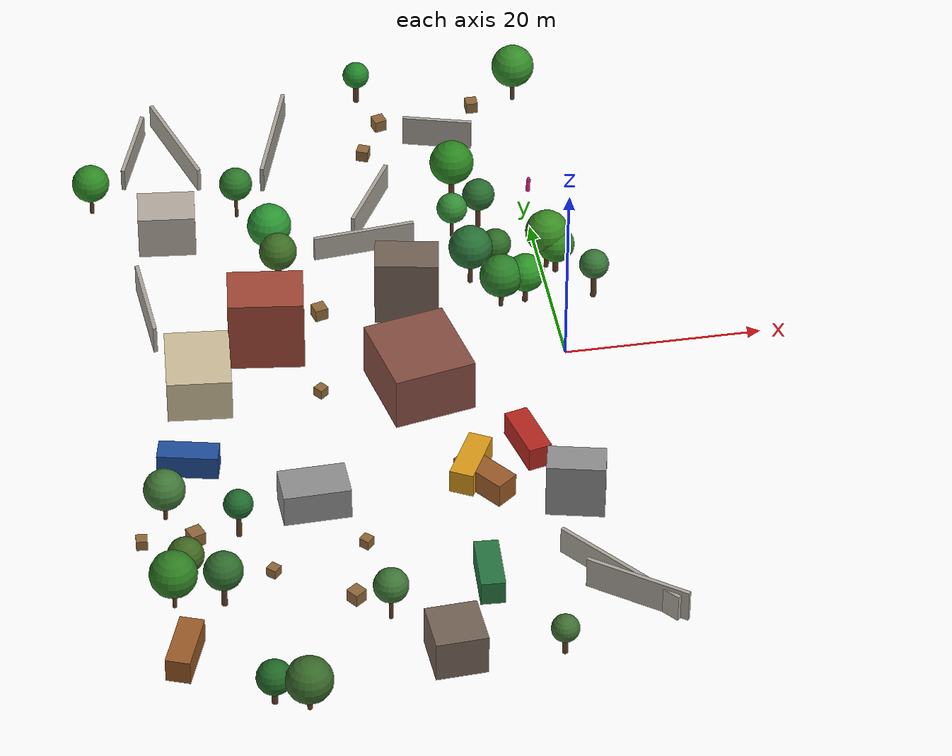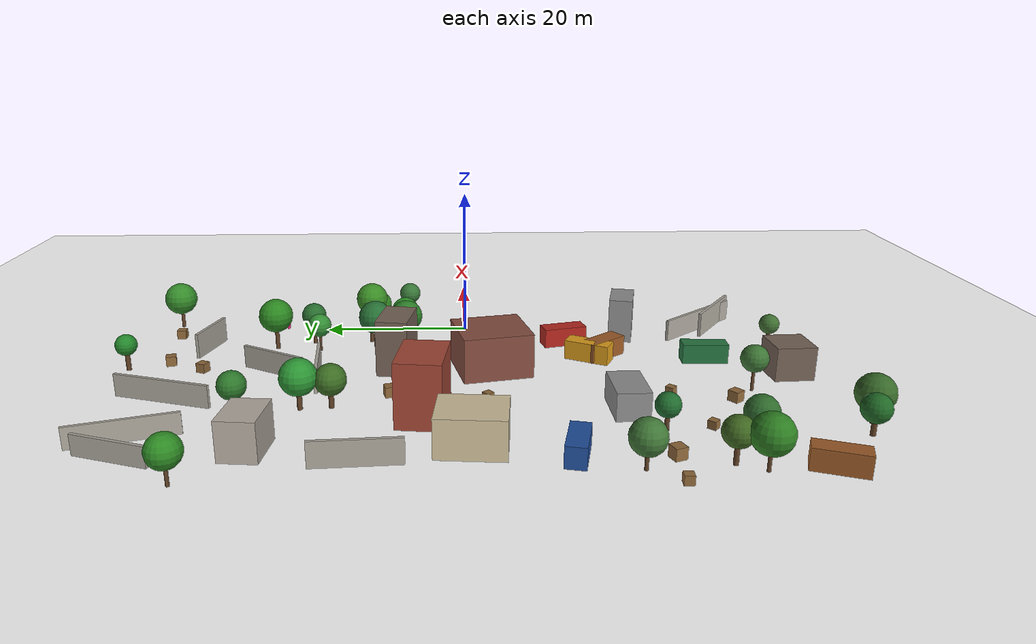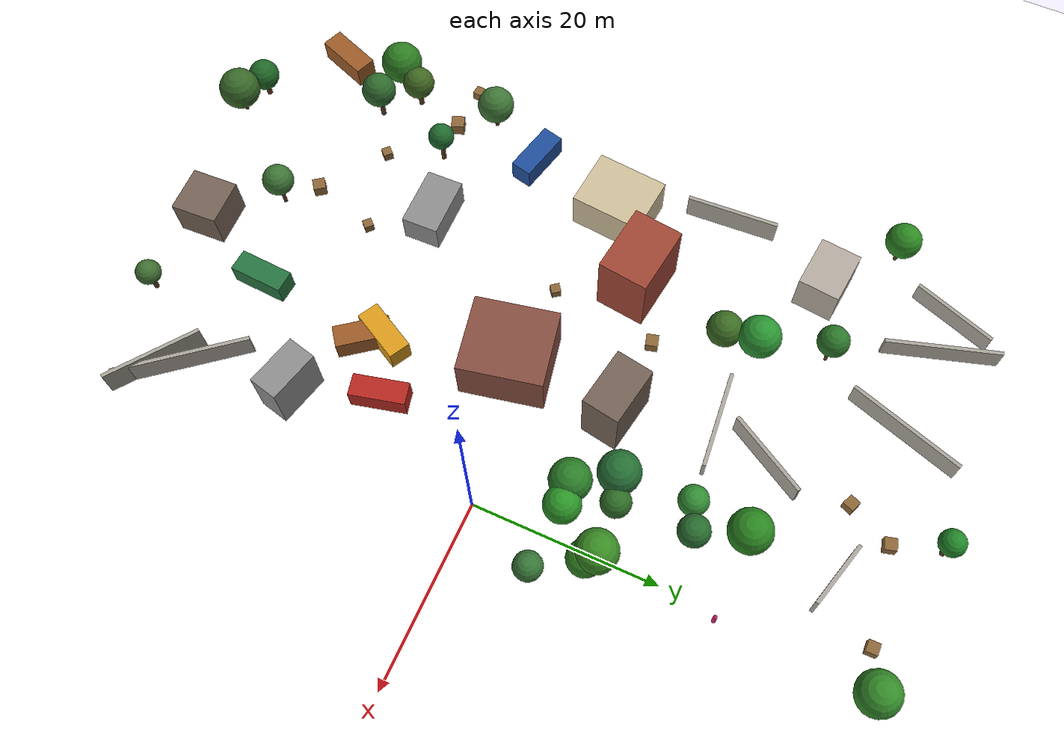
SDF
<sdf version="1.9">
 <world name="map_11">
  <model name="ground_plane">
   <static>true</static>
   <link name="link">
    <collision name="collision">
     <geometry><plane><normal>0 0 1</normal><size>1 1</size></plane></geometry>
    </collision>
   </link>
  </model>
  <include><uri>model://grass_ground</uri></include>
  <model name="building_0">
   <static>true</static>
   <pose>-37.14 -0.07 2.35 0 0 1.478</pose>
   <link name="link">
    <collision name="collision"><geometry><box><size>7.91 6.45 4.70</size></box></geometry></collision>
    <visual name="visual">
     <geometry><box><size>7.91 6.45 4.70</size></box></geometry>
     <material>
      <diffuse>0.800 0.740 0.600 1</diffuse>
      <ambient>0.640 0.592 0.480 1</ambient>
      <specular>0.05 0.05 0.05 1</specular>
     </material>
    </visual>
   </link>
  </model>
  <model name="building_5">
   <static>true</static>
   <pose>-29.55 5.37 4.00 0 0 -0.128</pose>
   <link name="link">
    <collision name="collision"><geometry><box><size>7.60 5.50 7.99</size></box></geometry></collision>
    <visual name="visual">
     <geometry><box><size>7.60 5.50 7.99</size></box></geometry>
     <material>
      <diffuse>0.620 0.270 0.200 1</diffuse>
      <ambient>0.496 0.216 0.160 1</ambient>
      <specular>0.05 0.05 0.05 1</specular>
     </material>
    </visual>
   </link>
  </model>
  <model name="building_6">
   <static>true</static>
   <pose>-14.67 9.16 3.68 0 0 -0.170</pose>
   <link name="link">
    <collision name="collision"><geometry><box><size>6.45 4.11 7.35</size></box></geometry></collision>
    <visual name="visual">
     <geometry><box><size>6.45 4.11 7.35</size></box></geometry>
     <material>
      <diffuse>0.450 0.380 0.330 1</diffuse>
      <ambient>0.360 0.304 0.264 1</ambient>
      <specular>0.05 0.05 0.05 1</specular>
     </material>
    </visual>
   </link>
  </model>
  <model name="building_7">
   <static>true</static>
   <pose>-3.29 -22.29 3.03 0 0 -0.231</pose>
   <link name="link">
    <collision name="collision"><geometry><box><size>5.74 3.22 6.05</size></box></geometry></collision>
    <visual name="visual">
     <geometry><box><size>5.74 3.22 6.05</size></box></geometry>
     <material>
      <diffuse>0.550 0.550 0.550 1</diffuse>
      <ambient>0.440 0.440 0.440 1</ambient>
      <specular>0.05 0.05 0.05 1</specular>
     </material>
    </visual>
   </link>
  </model>
  <model name="building_10">
   <static>true</static>
   <pose>-15.43 -3.11 2.90 0 0 1.774</pose>
   <link name="link">
    <collision name="collision"><geometry><box><size>9.10 8.34 5.81</size></box></geometry></collision>
    <visual name="visual">
     <geometry><box><size>9.10 8.34 5.81</size></box></geometry>
     <material>
      <diffuse>0.520 0.300 0.250 1</diffuse>
      <ambient>0.416 0.240 0.200 1</ambient>
      <specular>0.05 0.05 0.05 1</specular>
     </material>
    </visual>
   </link>
  </model>
  <model name="building_14">
   <static>true</static>
   <pose>-18.26 -41.08 2.21 0 0 1.622</pose>
   <link name="link">
    <collision name="collision"><geometry><box><size>5.15 5.05 4.43</size></box></geometry></collision>
    <visual name="visual">
     <geometry><box><size>5.15 5.05 4.43</size></box></geometry>
     <material>
      <diffuse>0.450 0.380 0.330 1</diffuse>
      <ambient>0.360 0.304 0.264 1</ambient>
      <specular>0.05 0.05 0.05 1</specular>
     </material>
    </visual>
   </link>
  </model>
  <model name="building_15">
   <static>true</static>
   <pose>-37.28 23.92 2.39 0 0 1.466</pose>
   <link name="link">
    <collision name="collision"><geometry><box><size>4.48 5.85 4.79</size></box></geometry></collision>
    <visual name="visual">
     <geometry><box><size>4.48 5.85 4.79</size></box></geometry>
     <material>
      <diffuse>0.700 0.660 0.620 1</diffuse>
      <ambient>0.560 0.528 0.496 1</ambient>
      <specular>0.05 0.05 0.05 1</specular>
     </material>
    </visual>
   </link>
  </model>
  <model name="building_17">
   <static>true</static>
   <pose>-28.28 -18.48 1.74 0 0 1.595</pose>
   <link name="link">
    <collision name="collision"><geometry><box><size>4.08 6.65 3.48</size></box></geometry></collision>
    <visual name="visual">
     <geometry><box><size>4.08 6.65 3.48</size></box></geometry>
     <material>
      <diffuse>0.550 0.550 0.550 1</diffuse>
      <ambient>0.440 0.440 0.440 1</ambient>
      <specular>0.05 0.05 0.05 1</specular>
     </material>
    </visual>
   </link>
  </model>
  <model name="wall_0">
   <static>true</static>
   <pose>-15.99 24.98 1.49 0 0 1.043</pose>
   <link name="link">
    <collision name="collision"><geometry><box><size>9.46 0.40 2.99</size></box></geometry></collision>
    <visual name="visual">
     <geometry><box><size>9.46 0.40 2.99</size></box></geometry>
     <material>
      <diffuse>0.660 0.640 0.600 1</diffuse>
      <ambient>0.528 0.512 0.480 1</ambient>
      <specular>0.05 0.05 0.05 1</specular>
     </material>
    </visual>
   </link>
  </model>
  <model name="wall_1">
   <static>true</static>
   <pose>-34.68 37.65 1.33 0 0 1.866</pose>
   <link name="link">
    <collision name="collision"><geometry><box><size>12.21 0.40 2.67</size></box></geometry></collision>
    <visual name="visual">
     <geometry><box><size>12.21 0.40 2.67</size></box></geometry>
     <material>
      <diffuse>0.660 0.640 0.600 1</diffuse>
      <ambient>0.528 0.512 0.480 1</ambient>
      <specular>0.05 0.05 0.05 1</specular>
     </material>
    </visual>
   </link>
  </model>
  <model name="wall_3">
   <static>true</static>
   <pose>-39.17 37.57 1.27 0 0 1.229</pose>
   <link name="link">
    <collision name="collision"><geometry><box><size>9.34 0.40 2.53</size></box></geometry></collision>
    <visual name="visual">
     <geometry><box><size>9.34 0.40 2.53</size></box></geometry>
     <material>
      <diffuse>0.660 0.640 0.600 1</diffuse>
      <ambient>0.528 0.512 0.480 1</ambient>
      <specular>0.05 0.05 0.05 1</specular>
     </material>
    </visual>
   </link>
  </model>
  <model name="wall_4">
   <static>true</static>
   <pose>-40.90 11.93 1.54 0 0 1.630</pose>
   <link name="link">
    <collision name="collision"><geometry><box><size>10.09 0.40 3.08</size></box></geometry></collision>
    <visual name="visual">
     <geometry><box><size>10.09 0.40 3.08</size></box></geometry>
     <material>
      <diffuse>0.660 0.640 0.600 1</diffuse>
      <ambient>0.528 0.512 0.480 1</ambient>
      <specular>0.05 0.05 0.05 1</specular>
     </material>
    </visual>
   </link>
  </model>
  <model name="wall_5">
   <static>true</static>
   <pose>-7.16 35.20 1.70 0 0 2.864</pose>
   <link name="link">
    <collision name="collision"><geometry><box><size>7.24 0.40 3.40</size></box></geometry></collision>
    <visual name="visual">
     <geometry><box><size>7.24 0.40 3.40</size></box></geometry>
     <material>
      <diffuse>0.660 0.640 0.600 1</diffuse>
      <ambient>0.528 0.512 0.480 1</ambient>
      <specular>0.05 0.05 0.05 1</specular>
     </material>
    </visual>
   </link>
  </model>
  <model name="wall_6">
   <static>true</static>
   <pose>-0.06 -36.59 1.72 0 0 2.512</pose>
   <link name="link">
    <collision name="collision"><geometry><box><size>10.61 0.40 3.44</size></box></geometry></collision>
    <visual name="visual">
     <geometry><box><size>10.61 0.40 3.44</size></box></geometry>
     <material>
      <diffuse>0.660 0.640 0.600 1</diffuse>
      <ambient>0.528 0.512 0.480 1</ambient>
      <specular>0.05 0.05 0.05 1</specular>
     </material>
    </visual>
   </link>
  </model>
  <model name="wall_8">
   <static>true</static>
   <pose>-24.46 36.70 1.45 0 0 1.255</pose>
   <link name="link">
    <collision name="collision"><geometry><box><size>12.90 0.40 2.90</size></box></geometry></collision>
    <visual name="visual">
     <geometry><box><size>12.90 0.40 2.90</size></box></geometry>
     <material>
      <diffuse>0.660 0.640 0.600 1</diffuse>
      <ambient>0.528 0.512 0.480 1</ambient>
      <specular>0.05 0.05 0.05 1</specular>
     </material>
    </visual>
   </link>
  </model>
  <model name="wall_10">
   <static>true</static>
   <pose>-17.50 19.16 1.37 0 0 0.092</pose>
   <link name="link">
    <collision name="collision"><geometry><box><size>10.52 0.40 2.75</size></box></geometry></collision>
    <visual name="visual">
     <geometry><box><size>10.52 0.40 2.75</size></box></geometry>
     <material>
      <diffuse>0.660 0.640 0.600 1</diffuse>
      <ambient>0.528 0.512 0.480 1</ambient>
      <specular>0.05 0.05 0.05 1</specular>
     </material>
    </visual>
   </link>
  </model>
  <model name="wall_11">
   <static>true</static>
   <pose>-1.28 -34.03 1.48 0 0 2.255</pose>
   <link name="link">
    <collision name="collision"><geometry><box><size>14.44 0.40 2.97</size></box></geometry></collision>
    <visual name="visual">
     <geometry><box><size>14.44 0.40 2.97</size></box></geometry>
     <material>
      <diffuse>0.660 0.640 0.600 1</diffuse>
      <ambient>0.528 0.512 0.480 1</ambient>
      <specular>0.05 0.05 0.05 1</specular>
     </material>
    </visual>
   </link>
  </model>
  <model name="container_0">
   <static>true</static>
   <pose>-6.40 -13.59 1.30 0 0 1.811</pose>
   <link name="link">
    <collision name="collision"><geometry><box><size>6.00 2.40 2.60</size></box></geometry></collision>
    <visual name="visual">
     <geometry><box><size>6.00 2.40 2.60</size></box></geometry>
     <material>
      <diffuse>0.700 0.150 0.120 1</diffuse>
      <ambient>0.560 0.120 0.096 1</ambient>
      <specular>0.05 0.05 0.05 1</specular>
     </material>
    </visual>
   </link>
  </model>
  <model name="container_1">
   <static>true</static>
   <pose>-43.27 -37.23 1.30 0 0 1.210</pose>
   <link name="link">
    <collision name="collision"><geometry><box><size>6.00 2.40 2.60</size></box></geometry></collision>
    <visual name="visual">
     <geometry><box><size>6.00 2.40 2.60</size></box></geometry>
     <material>
      <diffuse>0.600 0.350 0.150 1</diffuse>
      <ambient>0.480 0.280 0.120 1</ambient>
      <specular>0.05 0.05 0.05 1</specular>
     </material>
    </visual>
   </link>
  </model>
  <model name="container_2">
   <static>true</static>
   <pose>-12.53 -16.29 1.30 0 0 1.078</pose>
   <link name="link">
    <collision name="collision"><geometry><box><size>6.00 2.40 2.60</size></box></geometry></collision>
    <visual name="visual">
     <geometry><box><size>6.00 2.40 2.60</size></box></geometry>
     <material>
      <diffuse>0.850 0.600 0.100 1</diffuse>
      <ambient>0.680 0.480 0.080 1</ambient>
      <specular>0.05 0.05 0.05 1</specular>
     </material>
    </visual>
   </link>
  </model>
  <model name="container_3">
   <static>true</static>
   <pose>-13.43 -31.58 1.30 0 0 1.517</pose>
   <link name="link">
    <collision name="collision"><geometry><box><size>6.00 2.40 2.60</size></box></geometry></collision>
    <visual name="visual">
     <geometry><box><size>6.00 2.40 2.60</size></box></geometry>
     <material>
      <diffuse>0.150 0.450 0.250 1</diffuse>
      <ambient>0.120 0.360 0.200 1</ambient>
      <specular>0.05 0.05 0.05 1</specular>
     </material>
    </visual>
   </link>
  </model>
  <model name="container_4">
   <static>true</static>
   <pose>-11.52 -18.28 1.30 0 0 2.227</pose>
   <link name="link">
    <collision name="collision"><geometry><box><size>6.00 2.40 2.60</size></box></geometry></collision>
    <visual name="visual">
     <geometry><box><size>6.00 2.40 2.60</size></box></geometry>
     <material>
      <diffuse>0.600 0.350 0.150 1</diffuse>
      <ambient>0.480 0.280 0.120 1</ambient>
      <specular>0.05 0.05 0.05 1</specular>
     </material>
    </visual>
   </link>
  </model>
  <model name="container_7">
   <static>true</static>
   <pose>-39.58 -11.09 1.30 0 0 2.912</pose>
   <link name="link">
    <collision name="collision"><geometry><box><size>6.00 2.40 2.60</size></box></geometry></collision>
    <visual name="visual">
     <geometry><box><size>6.00 2.40 2.60</size></box></geometry>
     <material>
      <diffuse>0.120 0.300 0.600 1</diffuse>
      <ambient>0.096 0.240 0.480 1</ambient>
      <specular>0.05 0.05 0.05 1</specular>
     </material>
    </visual>
   </link>
  </model>
  <model name="crate_2">
   <static>true</static>
   <pose>-12.77 39.08 0.65 0 0 0.256</pose>
   <link name="link">
    <collision name="collision"><geometry><box><size>1.29 1.29 1.29</size></box></geometry></collision>
    <visual name="visual">
     <geometry><box><size>1.29 1.29 1.29</size></box></geometry>
     <material>
      <diffuse>0.550 0.400 0.220 1</diffuse>
      <ambient>0.440 0.320 0.176 1</ambient>
      <specular>0.05 0.05 0.05 1</specular>
     </material>
    </visual>
   </link>
  </model>
  <model name="crate_3">
   <static>true</static>
   <pose>-24.14 -24.62 0.52 0 0 2.388</pose>
   <link name="link">
    <collision name="collision"><geometry><box><size>1.03 1.03 1.03</size></box></geometry></collision>
    <visual name="visual">
     <geometry><box><size>1.03 1.03 1.03</size></box></geometry>
     <material>
      <diffuse>0.550 0.400 0.220 1</diffuse>
      <ambient>0.440 0.320 0.176 1</ambient>
      <specular>0.05 0.05 0.05 1</specular>
     </material>
    </visual>
   </link>
  </model>
  <model name="crate_5">
   <static>true</static>
   <pose>-2.55 40.56 0.62 0 0 0.022</pose>
   <link name="link">
    <collision name="collision"><geometry><box><size>1.23 1.23 1.23</size></box></geometry></collision>
    <visual name="visual">
     <geometry><box><size>1.23 1.23 1.23</size></box></geometry>
     <material>
      <diffuse>0.550 0.400 0.220 1</diffuse>
      <ambient>0.440 0.320 0.176 1</ambient>
      <specular>0.05 0.05 0.05 1</specular>
     </material>
    </visual>
   </link>
  </model>
  <model name="crate_7">
   <static>true</static>
   <pose>-33.49 -27.17 0.52 0 0 0.820</pose>
   <link name="link">
    <collision name="collision"><geometry><box><size>1.04 1.04 1.04</size></box></geometry></collision>
    <visual name="visual">
     <geometry><box><size>1.04 1.04 1.04</size></box></geometry>
     <material>
      <diffuse>0.550 0.400 0.220 1</diffuse>
      <ambient>0.440 0.320 0.176 1</ambient>
      <specular>0.05 0.05 0.05 1</specular>
     </material>
    </visual>
   </link>
  </model>
  <model name="crate_11">
   <static>true</static>
   <pose>-40.25 -21.45 0.74 0 0 0.361</pose>
   <link name="link">
    <collision name="collision"><geometry><box><size>1.47 1.47 1.47</size></box></geometry></collision>
    <visual name="visual">
     <geometry><box><size>1.47 1.47 1.47</size></box></geometry>
     <material>
      <diffuse>0.550 0.400 0.220 1</diffuse>
      <ambient>0.440 0.320 0.176 1</ambient>
      <specular>0.05 0.05 0.05 1</specular>
     </material>
    </visual>
   </link>
  </model>
  <model name="crate_14">
   <static>true</static>
   <pose>-25.19 -2.30 0.52 0 0 0.658</pose>
   <link name="link">
    <collision name="collision"><geometry><box><size>1.04 1.04 1.04</size></box></geometry></collision>
    <visual name="visual">
     <geometry><box><size>1.04 1.04 1.04</size></box></geometry>
     <material>
      <diffuse>0.550 0.400 0.220 1</diffuse>
      <ambient>0.440 0.320 0.176 1</ambient>
      <specular>0.05 0.05 0.05 1</specular>
     </material>
    </visual>
   </link>
  </model>
  <model name="crate_15">
   <static>true</static>
   <pose>-45.44 -21.21 0.56 0 0 1.507</pose>
   <link name="link">
    <collision name="collision"><geometry><box><size>1.11 1.11 1.11</size></box></geometry></collision>
    <visual name="visual">
     <geometry><box><size>1.11 1.11 1.11</size></box></geometry>
     <material>
      <diffuse>0.550 0.400 0.220 1</diffuse>
      <ambient>0.440 0.320 0.176 1</ambient>
      <specular>0.05 0.05 0.05 1</specular>
     </material>
    </visual>
   </link>
  </model>
  <model name="crate_19">
   <static>true</static>
   <pose>-15.19 34.31 0.62 0 0 2.737</pose>
   <link name="link">
    <collision name="collision"><geometry><box><size>1.24 1.24 1.24</size></box></geometry></collision>
    <visual name="visual">
     <geometry><box><size>1.24 1.24 1.24</size></box></geometry>
     <material>
      <diffuse>0.550 0.400 0.220 1</diffuse>
      <ambient>0.440 0.320 0.176 1</ambient>
      <specular>0.05 0.05 0.05 1</specular>
     </material>
    </visual>
   </link>
  </model>
  <model name="crate_20">
   <static>true</static>
   <pose>-26.27 -31.94 0.68 0 0 0.638</pose>
   <link name="link">
    <collision name="collision"><geometry><box><size>1.36 1.36 1.36</size></box></geometry></collision>
    <visual name="visual">
     <geometry><box><size>1.36 1.36 1.36</size></box></geometry>
     <material>
      <diffuse>0.550 0.400 0.220 1</diffuse>
      <ambient>0.440 0.320 0.176 1</ambient>
      <specular>0.05 0.05 0.05 1</specular>
     </material>
    </visual>
   </link>
  </model>
  <model name="crate_23">
   <static>true</static>
   <pose>-23.57 9.59 0.67 0 0 0.264</pose>
   <link name="link">
    <collision name="collision"><geometry><box><size>1.34 1.34 1.34</size></box></geometry></collision>
    <visual name="visual">
     <geometry><box><size>1.34 1.34 1.34</size></box></geometry>
     <material>
      <diffuse>0.550 0.400 0.220 1</diffuse>
      <ambient>0.440 0.320 0.176 1</ambient>
      <specular>0.05 0.05 0.05 1</specular>
     </material>
    </visual>
   </link>
  </model>
  <model name="tree_0">
   <static>true</static>
   <pose>-38.67 -30.45 0 0 0 0</pose>
   <link name="link">
    <collision name="trunk">
     <pose>0 0 1.52 0 0 0</pose>
     <geometry><cylinder><radius>0.28</radius><length>3.04</length></cylinder></geometry>
    </collision>
    <visual name="trunk">
     <pose>0 0 1.52 0 0 0</pose>
     <geometry><cylinder><radius>0.28</radius><length>3.04</length></cylinder></geometry>
     <material>
      <diffuse>0.360 0.240 0.140 1</diffuse>
      <ambient>0.288 0.192 0.112 1</ambient>
      <specular>0.05 0.05 0.05 1</specular>
     </material>
    </visual>
    <collision name="canopy">
     <pose>0 0 4.39 0 0 0</pose>
     <geometry><sphere><radius>1.92</radius></sphere></geometry>
    </collision>
    <visual name="canopy">
     <pose>0 0 4.39 0 0 0</pose>
     <geometry><sphere><radius>1.92</radius></sphere></geometry>
     <material>
      <diffuse>0.182 0.416 0.174 1</diffuse>
      <ambient>0.146 0.333 0.139 1</ambient>
      <specular>0.05 0.05 0.05 1</specular>
     </material>
    </visual>
   </link>
  </model>
  <model name="tree_2">
   <static>true</static>
   <pose>-4.82 13.30 0 0 0 0</pose>
   <link name="link">
    <collision name="trunk">
     <pose>0 0 1.40 0 0 0</pose>
     <geometry><cylinder><radius>0.28</radius><length>2.81</length></cylinder></geometry>
    </collision>
    <visual name="trunk">
     <pose>0 0 1.40 0 0 0</pose>
     <geometry><cylinder><radius>0.28</radius><length>2.81</length></cylinder></geometry>
     <material>
      <diffuse>0.360 0.240 0.140 1</diffuse>
      <ambient>0.288 0.192 0.112 1</ambient>
      <specular>0.05 0.05 0.05 1</specular>
     </material>
    </visual>
    <collision name="canopy">
     <pose>0 0 3.92 0 0 0</pose>
     <geometry><sphere><radius>1.60</radius></sphere></geometry>
    </collision>
    <visual name="canopy">
     <pose>0 0 3.92 0 0 0</pose>
     <geometry><sphere><radius>1.60</radius></sphere></geometry>
     <material>
      <diffuse>0.180 0.424 0.149 1</diffuse>
      <ambient>0.144 0.339 0.119 1</ambient>
      <specular>0.05 0.05 0.05 1</specular>
     </material>
    </visual>
   </link>
  </model>
  <model name="tree_6">
   <static>true</static>
   <pose>-8.12 -42.12 0 0 0 0</pose>
   <link name="link">
    <collision name="trunk">
     <pose>0 0 1.09 0 0 0</pose>
     <geometry><cylinder><radius>0.26</radius><length>2.18</length></cylinder></geometry>
    </collision>
    <visual name="trunk">
     <pose>0 0 1.09 0 0 0</pose>
     <geometry><cylinder><radius>0.26</radius><length>2.18</length></cylinder></geometry>
     <material>
      <diffuse>0.360 0.240 0.140 1</diffuse>
      <ambient>0.288 0.192 0.112 1</ambient>
      <specular>0.05 0.05 0.05 1</specular>
     </material>
    </visual>
    <collision name="canopy">
     <pose>0 0 3.14 0 0 0</pose>
     <geometry><sphere><radius>1.37</radius></sphere></geometry>
    </collision>
    <visual name="canopy">
     <pose>0 0 3.14 0 0 0</pose>
     <geometry><sphere><radius>1.37</radius></sphere></geometry>
     <material>
      <diffuse>0.248 0.434 0.193 1</diffuse>
      <ambient>0.198 0.347 0.154 1</ambient>
      <specular>0.05 0.05 0.05 1</specular>
     </material>
    </visual>
   </link>
  </model>
  <model name="tree_7">
   <static>true</static>
   <pose>-5.11 8.36 0 0 0 0</pose>
   <link name="link">
    <collision name="trunk">
     <pose>0 0 1.15 0 0 0</pose>
     <geometry><cylinder><radius>0.25</radius><length>2.31</length></cylinder></geometry>
    </collision>
    <visual name="trunk">
     <pose>0 0 1.15 0 0 0</pose>
     <geometry><cylinder><radius>0.25</radius><length>2.31</length></cylinder></geometry>
     <material>
      <diffuse>0.360 0.240 0.140 1</diffuse>
      <ambient>0.288 0.192 0.112 1</ambient>
      <specular>0.05 0.05 0.05 1</specular>
     </material>
    </visual>
    <collision name="canopy">
     <pose>0 0 3.85 0 0 0</pose>
     <geometry><sphere><radius>2.21</radius></sphere></geometry>
    </collision>
    <visual name="canopy">
     <pose>0 0 3.85 0 0 0</pose>
     <geometry><sphere><radius>2.21</radius></sphere></geometry>
     <material>
      <diffuse>0.169 0.496 0.157 1</diffuse>
      <ambient>0.135 0.397 0.126 1</ambient>
      <specular>0.05 0.05 0.05 1</specular>
     </material>
    </visual>
   </link>
  </model>
  <model name="tree_8">
   <static>true</static>
   <pose>-44.38 29.99 0 0 0 0</pose>
   <link name="link">
    <collision name="trunk">
     <pose>0 0 1.25 0 0 0</pose>
     <geometry><cylinder><radius>0.21</radius><length>2.50</length></cylinder></geometry>
    </collision>
    <visual name="trunk">
     <pose>0 0 1.25 0 0 0</pose>
     <geometry><cylinder><radius>0.21</radius><length>2.50</length></cylinder></geometry>
     <material>
      <diffuse>0.360 0.240 0.140 1</diffuse>
      <ambient>0.288 0.192 0.112 1</ambient>
      <specular>0.05 0.05 0.05 1</specular>
     </material>
    </visual>
    <collision name="canopy">
     <pose>0 0 3.85 0 0 0</pose>
     <geometry><sphere><radius>1.93</radius></sphere></geometry>
    </collision>
    <visual name="canopy">
     <pose>0 0 3.85 0 0 0</pose>
     <geometry><sphere><radius>1.93</radius></sphere></geometry>
     <material>
      <diffuse>0.177 0.538 0.140 1</diffuse>
      <ambient>0.141 0.430 0.112 1</ambient>
      <specular>0.05 0.05 0.05 1</specular>
     </material>
    </visual>
   </link>
  </model>
  <model name="tree_10">
   <static>true</static>
   <pose>-26.79 16.22 0 0 0 0</pose>
   <link name="link">
    <collision name="trunk">
     <pose>0 0 1.11 0 0 0</pose>
     <geometry><cylinder><radius>0.32</radius><length>2.23</length></cylinder></geometry>
    </collision>
    <visual name="trunk">
     <pose>0 0 1.11 0 0 0</pose>
     <geometry><cylinder><radius>0.32</radius><length>2.23</length></cylinder></geometry>
     <material>
      <diffuse>0.360 0.240 0.140 1</diffuse>
      <ambient>0.288 0.192 0.112 1</ambient>
      <specular>0.05 0.05 0.05 1</specular>
     </material>
    </visual>
    <collision name="canopy">
     <pose>0 0 3.58 0 0 0</pose>
     <geometry><sphere><radius>1.93</radius></sphere></geometry>
    </collision>
    <visual name="canopy">
     <pose>0 0 3.58 0 0 0</pose>
     <geometry><sphere><radius>1.93</radius></sphere></geometry>
     <material>
      <diffuse>0.235 0.426 0.137 1</diffuse>
      <ambient>0.188 0.341 0.110 1</ambient>
      <specular>0.05 0.05 0.05 1</specular>
     </material>
    </visual>
   </link>
  </model>
  <model name="tree_11">
   <static>true</static>
   <pose>1.35 12.76 0 0 0 0</pose>
   <link name="link">
    <collision name="trunk">
     <pose>0 0 1.10 0 0 0</pose>
     <geometry><cylinder><radius>0.27</radius><length>2.20</length></cylinder></geometry>
    </collision>
    <visual name="trunk">
     <pose>0 0 1.10 0 0 0</pose>
     <geometry><cylinder><radius>0.27</radius><length>2.20</length></cylinder></geometry>
     <material>
      <diffuse>0.360 0.240 0.140 1</diffuse>
      <ambient>0.288 0.192 0.112 1</ambient>
      <specular>0.05 0.05 0.05 1</specular>
     </material>
    </visual>
    <collision name="canopy">
     <pose>0 0 3.53 0 0 0</pose>
     <geometry><sphere><radius>1.91</radius></sphere></geometry>
    </collision>
    <visual name="canopy">
     <pose>0 0 3.53 0 0 0</pose>
     <geometry><sphere><radius>1.91</radius></sphere></geometry>
     <material>
      <diffuse>0.196 0.535 0.133 1</diffuse>
      <ambient>0.157 0.428 0.106 1</ambient>
      <specular>0.05 0.05 0.05 1</specular>
     </material>
    </visual>
   </link>
  </model>
  <model name="tree_12">
   <static>true</static>
   <pose>-41.83 -27.06 0 0 0 0</pose>
   <link name="link">
    <collision name="trunk">
     <pose>0 0 1.25 0 0 0</pose>
     <geometry><cylinder><radius>0.29</radius><length>2.51</length></cylinder></geometry>
    </collision>
    <visual name="trunk">
     <pose>0 0 1.25 0 0 0</pose>
     <geometry><cylinder><radius>0.29</radius><length>2.51</length></cylinder></geometry>
     <material>
      <diffuse>0.360 0.240 0.140 1</diffuse>
      <ambient>0.288 0.192 0.112 1</ambient>
      <specular>0.05 0.05 0.05 1</specular>
     </material>
    </visual>
    <collision name="canopy">
     <pose>0 0 3.76 0 0 0</pose>
     <geometry><sphere><radius>1.79</radius></sphere></geometry>
    </collision>
    <visual name="canopy">
     <pose>0 0 3.76 0 0 0</pose>
     <geometry><sphere><radius>1.79</radius></sphere></geometry>
     <material>
      <diffuse>0.246 0.402 0.128 1</diffuse>
      <ambient>0.197 0.322 0.102 1</ambient>
      <specular>0.05 0.05 0.05 1</specular>
     </material>
    </visual>
   </link>
  </model>
  <model name="tree_13">
   <static>true</static>
   <pose>-2.56 8.63 0 0 0 0</pose>
   <link name="link">
    <collision name="trunk">
     <pose>0 0 1.15 0 0 0</pose>
     <geometry><cylinder><radius>0.27</radius><length>2.31</length></cylinder></geometry>
    </collision>
    <visual name="trunk">
     <pose>0 0 1.15 0 0 0</pose>
     <geometry><cylinder><radius>0.27</radius><length>2.31</length></cylinder></geometry>
     <material>
      <diffuse>0.360 0.240 0.140 1</diffuse>
      <ambient>0.288 0.192 0.112 1</ambient>
      <specular>0.05 0.05 0.05 1</specular>
     </material>
    </visual>
    <collision name="canopy">
     <pose>0 0 3.68 0 0 0</pose>
     <geometry><sphere><radius>1.96</radius></sphere></geometry>
    </collision>
    <visual name="canopy">
     <pose>0 0 3.68 0 0 0</pose>
     <geometry><sphere><radius>1.96</radius></sphere></geometry>
     <material>
      <diffuse>0.172 0.582 0.154 1</diffuse>
      <ambient>0.138 0.465 0.124 1</ambient>
      <specular>0.05 0.05 0.05 1</specular>
     </material>
    </visual>
   </link>
  </model>
  <model name="tree_16">
   <static>true</static>
   <pose>-14.40 44.09 0 0 0 0</pose>
   <link name="link">
    <collision name="trunk">
     <pose>0 0 1.24 0 0 0</pose>
     <geometry><cylinder><radius>0.31</radius><length>2.49</length></cylinder></geometry>
    </collision>
    <visual name="trunk">
     <pose>0 0 1.24 0 0 0</pose>
     <geometry><cylinder><radius>0.31</radius><length>2.49</length></cylinder></geometry>
     <material>
      <diffuse>0.360 0.240 0.140 1</diffuse>
      <ambient>0.288 0.192 0.112 1</ambient>
      <specular>0.05 0.05 0.05 1</specular>
     </material>
    </visual>
    <collision name="canopy">
     <pose>0 0 3.47 0 0 0</pose>
     <geometry><sphere><radius>1.40</radius></sphere></geometry>
    </collision>
    <visual name="canopy">
     <pose>0 0 3.47 0 0 0</pose>
     <geometry><sphere><radius>1.40</radius></sphere></geometry>
     <material>
      <diffuse>0.135 0.528 0.166 1</diffuse>
      <ambient>0.108 0.422 0.133 1</ambient>
      <specular>0.05 0.05 0.05 1</specular>
     </material>
    </visual>
   </link>
  </model>
  <model name="tree_18">
   <static>true</static>
   <pose>2.13 41.73 0 0 0 0</pose>
   <link name="link">
    <collision name="trunk">
     <pose>0 0 1.40 0 0 0</pose>
     <geometry><cylinder><radius>0.24</radius><length>2.81</length></cylinder></geometry>
    </collision>
    <visual name="trunk">
     <pose>0 0 1.40 0 0 0</pose>
     <geometry><cylinder><radius>0.24</radius><length>2.81</length></cylinder></geometry>
     <material>
      <diffuse>0.360 0.240 0.140 1</diffuse>
      <ambient>0.288 0.192 0.112 1</ambient>
      <specular>0.05 0.05 0.05 1</specular>
     </material>
    </visual>
    <collision name="canopy">
     <pose>0 0 4.39 0 0 0</pose>
     <geometry><sphere><radius>2.25</radius></sphere></geometry>
    </collision>
    <visual name="canopy">
     <pose>0 0 4.39 0 0 0</pose>
     <geometry><sphere><radius>2.25</radius></sphere></geometry>
     <material>
      <diffuse>0.205 0.546 0.164 1</diffuse>
      <ambient>0.164 0.437 0.131 1</ambient>
      <specular>0.05 0.05 0.05 1</specular>
     </material>
    </visual>
   </link>
  </model>
  <model name="tree_20">
   <static>true</static>
   <pose>-7.15 26.12 0 0 0 0</pose>
   <link name="link">
    <collision name="trunk">
     <pose>0 0 1.59 0 0 0</pose>
     <geometry><cylinder><radius>0.28</radius><length>3.19</length></cylinder></geometry>
    </collision>
    <visual name="trunk">
     <pose>0 0 1.59 0 0 0</pose>
     <geometry><cylinder><radius>0.28</radius><length>3.19</length></cylinder></geometry>
     <material>
      <diffuse>0.360 0.240 0.140 1</diffuse>
      <ambient>0.288 0.192 0.112 1</ambient>
      <specular>0.05 0.05 0.05 1</specular>
     </material>
    </visual>
    <collision name="canopy">
     <pose>0 0 4.79 0 0 0</pose>
     <geometry><sphere><radius>2.29</radius></sphere></geometry>
    </collision>
    <visual name="canopy">
     <pose>0 0 4.79 0 0 0</pose>
     <geometry><sphere><radius>2.29</radius></sphere></geometry>
     <material>
      <diffuse>0.170 0.527 0.128 1</diffuse>
      <ambient>0.136 0.422 0.103 1</ambient>
      <specular>0.05 0.05 0.05 1</specular>
     </material>
    </visual>
   </link>
  </model>
  <model name="tree_22">
   <static>true</static>
   <pose>-27.16 19.87 0 0 0 0</pose>
   <link name="link">
    <collision name="trunk">
     <pose>0 0 1.26 0 0 0</pose>
     <geometry><cylinder><radius>0.31</radius><length>2.51</length></cylinder></geometry>
    </collision>
    <visual name="trunk">
     <pose>0 0 1.26 0 0 0</pose>
     <geometry><cylinder><radius>0.31</radius><length>2.51</length></cylinder></geometry>
     <material>
      <diffuse>0.360 0.240 0.140 1</diffuse>
      <ambient>0.288 0.192 0.112 1</ambient>
      <specular>0.05 0.05 0.05 1</specular>
     </material>
    </visual>
    <collision name="canopy">
     <pose>0 0 4.10 0 0 0</pose>
     <geometry><sphere><radius>2.27</radius></sphere></geometry>
    </collision>
    <visual name="canopy">
     <pose>0 0 4.10 0 0 0</pose>
     <geometry><sphere><radius>2.27</radius></sphere></geometry>
     <material>
      <diffuse>0.170 0.580 0.200 1</diffuse>
      <ambient>0.136 0.464 0.160 1</ambient>
      <specular>0.05 0.05 0.05 1</specular>
     </material>
    </visual>
   </link>
  </model>
  <model name="tree_23">
   <static>true</static>
   <pose>4.42 8.23 0 0 0 0</pose>
   <link name="link">
    <collision name="trunk">
     <pose>0 0 1.55 0 0 0</pose>
     <geometry><cylinder><radius>0.29</radius><length>3.10</length></cylinder></geometry>
    </collision>
    <visual name="trunk">
     <pose>0 0 1.55 0 0 0</pose>
     <geometry><cylinder><radius>0.29</radius><length>3.10</length></cylinder></geometry>
     <material>
      <diffuse>0.360 0.240 0.140 1</diffuse>
      <ambient>0.288 0.192 0.112 1</ambient>
      <specular>0.05 0.05 0.05 1</specular>
     </material>
    </visual>
    <collision name="canopy">
     <pose>0 0 4.16 0 0 0</pose>
     <geometry><sphere><radius>1.52</radius></sphere></geometry>
    </collision>
    <visual name="canopy">
     <pose>0 0 4.16 0 0 0</pose>
     <geometry><sphere><radius>1.52</radius></sphere></geometry>
     <material>
      <diffuse>0.216 0.461 0.216 1</diffuse>
      <ambient>0.173 0.369 0.173 1</ambient>
      <specular>0.05 0.05 0.05 1</specular>
     </material>
    </visual>
   </link>
  </model>
  <model name="tree_24">
   <static>true</static>
   <pose>-29.66 26.92 0 0 0 0</pose>
   <link name="link">
    <collision name="trunk">
     <pose>0 0 1.54 0 0 0</pose>
     <geometry><cylinder><radius>0.18</radius><length>3.08</length></cylinder></geometry>
    </collision>
    <visual name="trunk">
     <pose>0 0 1.54 0 0 0</pose>
     <geometry><cylinder><radius>0.18</radius><length>3.08</length></cylinder></geometry>
     <material>
      <diffuse>0.360 0.240 0.140 1</diffuse>
      <ambient>0.288 0.192 0.112 1</ambient>
      <specular>0.05 0.05 0.05 1</specular>
     </material>
    </visual>
    <collision name="canopy">
     <pose>0 0 4.27 0 0 0</pose>
     <geometry><sphere><radius>1.71</radius></sphere></geometry>
    </collision>
    <visual name="canopy">
     <pose>0 0 4.27 0 0 0</pose>
     <geometry><sphere><radius>1.71</radius></sphere></geometry>
     <material>
      <diffuse>0.175 0.468 0.167 1</diffuse>
      <ambient>0.140 0.374 0.134 1</ambient>
      <specular>0.05 0.05 0.05 1</specular>
     </material>
    </visual>
   </link>
  </model>
  <model name="tree_25">
   <static>true</static>
   <pose>0.57 13.60 0 0 0 0</pose>
   <link name="link">
    <collision name="trunk">
     <pose>0 0 1.52 0 0 0</pose>
     <geometry><cylinder><radius>0.24</radius><length>3.03</length></cylinder></geometry>
    </collision>
    <visual name="trunk">
     <pose>0 0 1.52 0 0 0</pose>
     <geometry><cylinder><radius>0.24</radius><length>3.03</length></cylinder></geometry>
     <material>
      <diffuse>0.360 0.240 0.140 1</diffuse>
      <ambient>0.288 0.192 0.112 1</ambient>
      <specular>0.05 0.05 0.05 1</specular>
     </material>
    </visual>
    <collision name="canopy">
     <pose>0 0 4.60 0 0 0</pose>
     <geometry><sphere><radius>2.24</radius></sphere></geometry>
    </collision>
    <visual name="canopy">
     <pose>0 0 4.60 0 0 0</pose>
     <geometry><sphere><radius>2.24</radius></sphere></geometry>
     <material>
      <diffuse>0.225 0.549 0.143 1</diffuse>
      <ambient>0.180 0.439 0.115 1</ambient>
      <specular>0.05 0.05 0.05 1</specular>
     </material>
    </visual>
   </link>
  </model>
  <model name="tree_26">
   <static>true</static>
   <pose>-32.75 -45.45 0 0 0 0</pose>
   <link name="link">
    <collision name="trunk">
     <pose>0 0 1.05 0 0 0</pose>
     <geometry><cylinder><radius>0.24</radius><length>2.09</length></cylinder></geometry>
    </collision>
    <visual name="trunk">
     <pose>0 0 1.05 0 0 0</pose>
     <geometry><cylinder><radius>0.24</radius><length>2.09</length></cylinder></geometry>
     <material>
      <diffuse>0.360 0.240 0.140 1</diffuse>
      <ambient>0.288 0.192 0.112 1</ambient>
      <specular>0.05 0.05 0.05 1</specular>
     </material>
    </visual>
    <collision name="canopy">
     <pose>0 0 3.70 0 0 0</pose>
     <geometry><sphere><radius>2.30</radius></sphere></geometry>
    </collision>
    <visual name="canopy">
     <pose>0 0 3.70 0 0 0</pose>
     <geometry><sphere><radius>2.30</radius></sphere></geometry>
     <material>
      <diffuse>0.217 0.408 0.160 1</diffuse>
      <ambient>0.173 0.327 0.128 1</ambient>
      <specular>0.05 0.05 0.05 1</specular>
     </material>
    </visual>
   </link>
  </model>
  <model name="tree_27">
   <static>true</static>
   <pose>-23.41 -34.85 0 0 0 0</pose>
   <link name="link">
    <collision name="trunk">
     <pose>0 0 1.51 0 0 0</pose>
     <geometry><cylinder><radius>0.20</radius><length>3.02</length></cylinder></geometry>
    </collision>
    <visual name="trunk">
     <pose>0 0 1.51 0 0 0</pose>
     <geometry><cylinder><radius>0.20</radius><length>3.02</length></cylinder></geometry>
     <material>
      <diffuse>0.360 0.240 0.140 1</diffuse>
      <ambient>0.288 0.192 0.112 1</ambient>
      <specular>0.05 0.05 0.05 1</specular>
     </material>
    </visual>
    <collision name="canopy">
     <pose>0 0 4.23 0 0 0</pose>
     <geometry><sphere><radius>1.72</radius></sphere></geometry>
    </collision>
    <visual name="canopy">
     <pose>0 0 4.23 0 0 0</pose>
     <geometry><sphere><radius>1.72</radius></sphere></geometry>
     <material>
      <diffuse>0.239 0.458 0.207 1</diffuse>
      <ambient>0.192 0.366 0.166 1</ambient>
      <specular>0.05 0.05 0.05 1</specular>
     </material>
    </visual>
   </link>
  </model>
  <model name="tree_32">
   <static>true</static>
   <pose>-43.36 -29.95 0 0 0 0</pose>
   <link name="link">
    <collision name="trunk">
     <pose>0 0 1.29 0 0 0</pose>
     <geometry><cylinder><radius>0.21</radius><length>2.58</length></cylinder></geometry>
    </collision>
    <visual name="trunk">
     <pose>0 0 1.29 0 0 0</pose>
     <geometry><cylinder><radius>0.21</radius><length>2.58</length></cylinder></geometry>
     <material>
      <diffuse>0.360 0.240 0.140 1</diffuse>
      <ambient>0.288 0.192 0.112 1</ambient>
      <specular>0.05 0.05 0.05 1</specular>
     </material>
    </visual>
    <collision name="canopy">
     <pose>0 0 4.21 0 0 0</pose>
     <geometry><sphere><radius>2.33</radius></sphere></geometry>
    </collision>
    <visual name="canopy">
     <pose>0 0 4.21 0 0 0</pose>
     <geometry><sphere><radius>2.33</radius></sphere></geometry>
     <material>
      <diffuse>0.177 0.489 0.132 1</diffuse>
      <ambient>0.141 0.391 0.105 1</ambient>
      <specular>0.05 0.05 0.05 1</specular>
     </material>
    </visual>
   </link>
  </model>
  <model name="tree_33">
   <static>true</static>
   <pose>-36.00 -21.21 0 0 0 0</pose>
   <link name="link">
    <collision name="trunk">
     <pose>0 0 1.54 0 0 0</pose>
     <geometry><cylinder><radius>0.26</radius><length>3.08</length></cylinder></geometry>
    </collision>
    <visual name="trunk">
     <pose>0 0 1.54 0 0 0</pose>
     <geometry><cylinder><radius>0.26</radius><length>3.08</length></cylinder></geometry>
     <material>
      <diffuse>0.360 0.240 0.140 1</diffuse>
      <ambient>0.288 0.192 0.112 1</ambient>
      <specular>0.05 0.05 0.05 1</specular>
     </material>
    </visual>
    <collision name="canopy">
     <pose>0 0 4.10 0 0 0</pose>
     <geometry><sphere><radius>1.46</radius></sphere></geometry>
    </collision>
    <visual name="canopy">
     <pose>0 0 4.10 0 0 0</pose>
     <geometry><sphere><radius>1.46</radius></sphere></geometry>
     <material>
      <diffuse>0.121 0.416 0.179 1</diffuse>
      <ambient>0.097 0.333 0.143 1</ambient>
      <specular>0.05 0.05 0.05 1</specular>
     </material>
    </visual>
   </link>
  </model>
  <model name="tree_34">
   <static>true</static>
   <pose>-42.68 -17.63 0 0 0 0</pose>
   <link name="link">
    <collision name="trunk">
     <pose>0 0 1.15 0 0 0</pose>
     <geometry><cylinder><radius>0.22</radius><length>2.30</length></cylinder></geometry>
    </collision>
    <visual name="trunk">
     <pose>0 0 1.15 0 0 0</pose>
     <geometry><cylinder><radius>0.22</radius><length>2.30</length></cylinder></geometry>
     <material>
      <diffuse>0.360 0.240 0.140 1</diffuse>
      <ambient>0.288 0.192 0.112 1</ambient>
      <specular>0.05 0.05 0.05 1</specular>
     </material>
    </visual>
    <collision name="canopy">
     <pose>0 0 3.74 0 0 0</pose>
     <geometry><sphere><radius>2.06</radius></sphere></geometry>
    </collision>
    <visual name="canopy">
     <pose>0 0 3.74 0 0 0</pose>
     <geometry><sphere><radius>2.06</radius></sphere></geometry>
     <material>
      <diffuse>0.248 0.462 0.212 1</diffuse>
      <ambient>0.199 0.369 0.170 1</ambient>
      <specular>0.05 0.05 0.05 1</specular>
     </material>
    </visual>
   </link>
  </model>
  <model name="tree_36">
   <static>true</static>
   <pose>-35.83 -44.16 0 0 0 0</pose>
   <link name="link">
    <collision name="trunk">
     <pose>0 0 1.03 0 0 0</pose>
     <geometry><cylinder><radius>0.31</radius><length>2.06</length></cylinder></geometry>
    </collision>
    <visual name="trunk">
     <pose>0 0 1.03 0 0 0</pose>
     <geometry><cylinder><radius>0.31</radius><length>2.06</length></cylinder></geometry>
     <material>
      <diffuse>0.360 0.240 0.140 1</diffuse>
      <ambient>0.288 0.192 0.112 1</ambient>
      <specular>0.05 0.05 0.05 1</specular>
     </material>
    </visual>
    <collision name="canopy">
     <pose>0 0 3.28 0 0 0</pose>
     <geometry><sphere><radius>1.73</radius></sphere></geometry>
    </collision>
    <visual name="canopy">
     <pose>0 0 3.28 0 0 0</pose>
     <geometry><sphere><radius>1.73</radius></sphere></geometry>
     <material>
      <diffuse>0.124 0.406 0.147 1</diffuse>
      <ambient>0.099 0.325 0.118 1</ambient>
      <specular>0.05 0.05 0.05 1</specular>
     </material>
    </visual>
   </link>
  </model>
  <model name="tree_39">
   <static>true</static>
   <pose>-7.54 12.49 0 0 0 0</pose>
   <link name="link">
    <collision name="trunk">
     <pose>0 0 1.49 0 0 0</pose>
     <geometry><cylinder><radius>0.24</radius><length>2.99</length></cylinder></geometry>
    </collision>
    <visual name="trunk">
     <pose>0 0 1.49 0 0 0</pose>
     <geometry><cylinder><radius>0.24</radius><length>2.99</length></cylinder></geometry>
     <material>
      <diffuse>0.360 0.240 0.140 1</diffuse>
      <ambient>0.288 0.192 0.112 1</ambient>
      <specular>0.05 0.05 0.05 1</specular>
     </material>
    </visual>
    <collision name="canopy">
     <pose>0 0 4.56 0 0 0</pose>
     <geometry><sphere><radius>2.24</radius></sphere></geometry>
    </collision>
    <visual name="canopy">
     <pose>0 0 4.56 0 0 0</pose>
     <geometry><sphere><radius>2.24</radius></sphere></geometry>
     <material>
      <diffuse>0.149 0.435 0.205 1</diffuse>
      <ambient>0.119 0.348 0.164 1</ambient>
      <specular>0.05 0.05 0.05 1</specular>
     </material>
    </visual>
   </link>
  </model>
  <model name="tree_42">
   <static>true</static>
   <pose>-5.19 21.22 0 0 0 0</pose>
   <link name="link">
    <collision name="trunk">
     <pose>0 0 1.47 0 0 0</pose>
     <geometry><cylinder><radius>0.26</radius><length>2.94</length></cylinder></geometry>
    </collision>
    <visual name="trunk">
     <pose>0 0 1.47 0 0 0</pose>
     <geometry><cylinder><radius>0.26</radius><length>2.94</length></cylinder></geometry>
     <material>
      <diffuse>0.360 0.240 0.140 1</diffuse>
      <ambient>0.288 0.192 0.112 1</ambient>
      <specular>0.05 0.05 0.05 1</specular>
     </material>
    </visual>
    <collision name="canopy">
     <pose>0 0 4.12 0 0 0</pose>
     <geometry><sphere><radius>1.67</radius></sphere></geometry>
    </collision>
    <visual name="canopy">
     <pose>0 0 4.12 0 0 0</pose>
     <geometry><sphere><radius>1.67</radius></sphere></geometry>
     <material>
      <diffuse>0.157 0.423 0.180 1</diffuse>
      <ambient>0.126 0.338 0.144 1</ambient>
      <specular>0.05 0.05 0.05 1</specular>
     </material>
    </visual>
   </link>
  </model>
  <model name="tree_43">
   <static>true</static>
   <pose>-8.15 20.07 0 0 0 0</pose>
   <link name="link">
    <collision name="trunk">
     <pose>0 0 1.28 0 0 0</pose>
     <geometry><cylinder><radius>0.19</radius><length>2.56</length></cylinder></geometry>
    </collision>
    <visual name="trunk">
     <pose>0 0 1.28 0 0 0</pose>
     <geometry><cylinder><radius>0.19</radius><length>2.56</length></cylinder></geometry>
     <material>
      <diffuse>0.360 0.240 0.140 1</diffuse>
      <ambient>0.288 0.192 0.112 1</ambient>
      <specular>0.05 0.05 0.05 1</specular>
     </material>
    </visual>
    <collision name="canopy">
     <pose>0 0 3.66 0 0 0</pose>
     <geometry><sphere><radius>1.58</radius></sphere></geometry>
    </collision>
    <visual name="canopy">
     <pose>0 0 3.66 0 0 0</pose>
     <geometry><sphere><radius>1.58</radius></sphere></geometry>
     <material>
      <diffuse>0.201 0.554 0.210 1</diffuse>
      <ambient>0.160 0.443 0.168 1</ambient>
      <specular>0.05 0.05 0.05 1</specular>
     </material>
    </visual>
   </link>
  </model>
  <model name="entity_10">
   <static>true</static>
   <pose>0.97 26.05 0 0 0 0</pose>
   <link name="link">
    <visual name="body">
     <pose>0 0 0.72 0 0 0</pose>
     <geometry><cylinder><radius>0.22</radius><length>1.44</length></cylinder></geometry>
     <material>
      <diffuse>0.900 0.150 0.500 1</diffuse>
      <ambient>0.720 0.120 0.400 1</ambient>
      <specular>0.05 0.05 0.05 1</specular>
     </material>
    </visual>
    <visual name="head">
     <pose>0 0 1.6 0 0 0</pose>
     <geometry><sphere><radius>0.15</radius></sphere></geometry>
     <material>
      <diffuse>0.900 0.150 0.500 1</diffuse>
      <ambient>0.720 0.120 0.400 1</ambient>
      <specular>0.05 0.05 0.05 1</specular>
     </material>
    </visual>
   </link>
  </model>
  <model name="device">
   <static>true</static>
   <link name="link">
    <visual name="post">
     <pose>0 0 0.78 0 0 0</pose>
     <geometry><cylinder><radius>0.02</radius><length>1.56</length></cylinder></geometry>
     <material>
      <diffuse>0.150 0.150 0.150 1</diffuse>
      <ambient>0.120 0.120 0.120 1</ambient>
      <specular>0.05 0.05 0.05 1</specular>
     </material>
    </visual>
    <visual name="body">
     <pose>-0.03 0 1.6 0 0 0</pose>
     <geometry><box><size>0.06 0.18 0.12</size></box></geometry>
     <material>
      <diffuse>0.100 0.300 0.800 1</diffuse>
      <ambient>0.080 0.240 0.640 1</ambient>
      <specular>0.05 0.05 0.05 1</specular>
     </material>
    </visual>
    <sensor name="camera" type="camera">
     <pose>0 0 1.6 0 0 0</pose>
     <always_on>1</always_on>
     <update_rate>30</update_rate>
     <visualize>false</visualize>
     <topic>device/camera/image</topic>
     <camera>
      <horizontal_fov>1.3090</horizontal_fov>
      <image><width>960</width><height>720</height><format>R8G8B8</format></image>
      <clip><near>0.1</near><far>200</far></clip>
     </camera>
    </sensor>
   </link>
  </model>
 </world>
</sdf>
